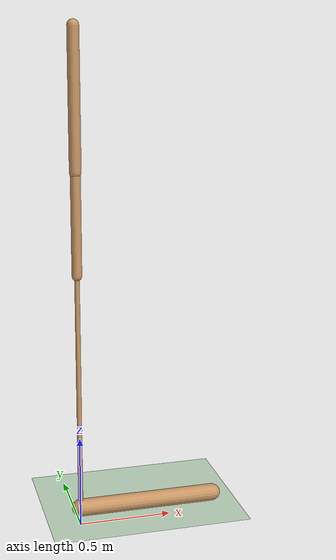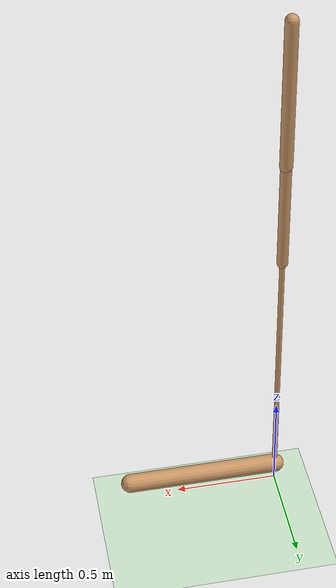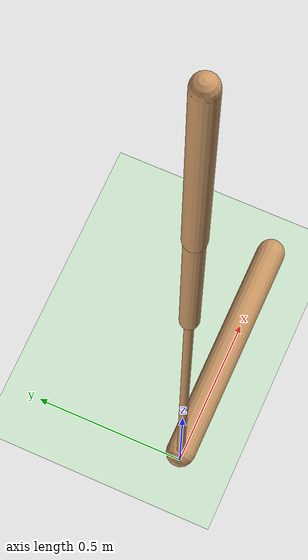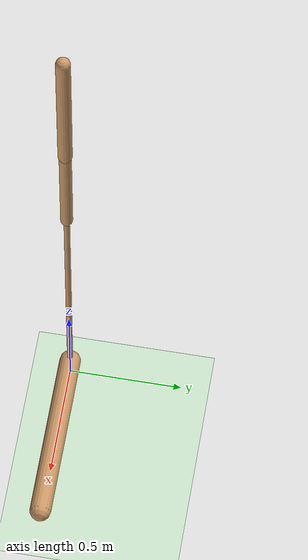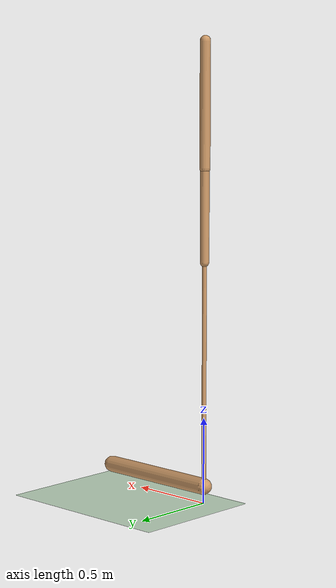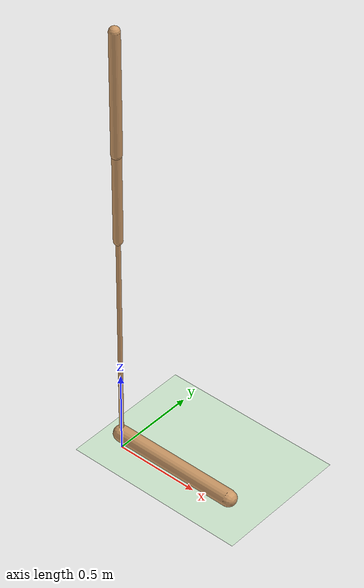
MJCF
<mujoco model="walker2d">
  <compiler angle="degree" inertiafromgeom="true" />
  <default>
    <joint armature="0.01" damping=".1" limited="true" />
    <geom conaffinity="0" condim="3" contype="1" density="1000" friction=".7 .1 .1" rgba="0.8 0.6 .4 1" />
  </default>
  <option integrator="RK4" timestep="0.002" />
  <worldbody>
    <light cutoff="100" diffuse="1 1 1" dir="-0 0 -1.3" directional="true" exponent="1" pos="0 0 1.3" specular=".1 .1 .1" />
    <geom conaffinity="1" condim="3" name="floor" pos="0 0 0" rgba="0.8 0.9 0.8 1" size="40 40 40" type="plane" material="MatPlane" />
    <body name="torso" pos="0 0 2.2799989342689515">
      <camera name="track" mode="trackcom" pos="0 -5 -1.25" xyaxes="1 0 0 0 0 1" />
      <joint armature="0" axis="1 0 0" damping="0" limited="false" name="rootx" pos="0 0 -1.25" stiffness="0" type="slide" />
      <joint armature="0" axis="0 0 1" damping="0" limited="false" name="rootz" pos="0 0 -1.25" ref="1.25" stiffness="0" type="slide" />
      <joint armature="0" axis="0 1 0" damping="0" limited="false" name="rooty" pos="0 0 0" stiffness="0" type="hinge" />
      <geom friction="0.9" name="torso_geom" size="0.0301141869276762 0.35329127311706543" type="capsule" />
      <body name="thigh" pos="0 0 -0.35329127311706543">
        <joint axis="0 -1 0" name="thigh_joint" pos="0 0 0" range="-150 0" type="hinge" />
        <site name="torso_thigh_site" pos="0 0 0" size="0.01" type="sphere" rgba="1 0 0 0.5" />
        <geom friction="0.9" pos="0 0 -0.26468005776405334" name="thigh_geom" size="0.026150165125727654 0.26468005776405334" type="capsule" />
        <body name="leg" pos="0 0 -1.1780338883399963">
          <joint axis="0 -1 0" name="leg_joint" pos="0 0 0.6486737728118896" range="-150 0" type="hinge" />
          <site name="thigh_leg_site" pos="0 0 0.25" size="0.01" type="sphere" rgba="1 0 0 0.5" />
          <geom friction="0.9" name="leg_geom" size="0.012780288234353065 0.6486737728118896" type="capsule" />
          <body name="foot" pos="0.7416943907737732 0 -0.7486737728118896">
            <joint axis="0 -1 0" name="foot_joint" pos="-0.7416943907737732 0 0.1" range="-45 45" type="hinge" />
            <site name="leg_foot_site" pos="-0.2 0 0.1" size="0.01" type="sphere" rgba="1 0 0 0.5" />
            <geom friction="0.9" pos="-0.3708471953868866 0 0.1" quat="0.70710678118654757 0 -0.70710678118654746 0" name="foot_geom" size="0.046988096088171005 0.3708471953868866" type="capsule" />
          </body>
        </body>
      </body>

      <body name="thigh_left" pos="0 0 -0.35329127311706543">
        <joint axis="0 -1 0" name="thigh_left_joint" pos="0 0 0" range="-150 0" type="hinge" />
        <site name="torso_thigh_left_site" pos="0 0 0" size="0.01" type="sphere" rgba="1 0 0 0.5" />
        <geom friction="0.9" name="thigh_left_geom" rgba=".7 .3 .6 1" size="0.026150165125727654 0.26468005776405334" pos="0 0 -0.26468005776405334" type="capsule" />
        <body name="leg_left" pos="0 0 -1.1780338883399963">
          <joint axis="0 -1 0" name="leg_left_joint" pos="0 0 0.6486737728118896" range="-150 0" type="hinge" />
          <site name="thigh_leg_left_site" pos="0 0 0.25" size="0.01" type="sphere" rgba="1 0 0 0.5" />
          <geom friction="0.9" name="leg_left_geom" rgba=".7 .3 .6 1" size="0.012780288234353065 0.6486737728118896" type="capsule" />
          <body name="foot_left" pos="0.7416943907737732 0 -0.7486737728118896">
            <joint axis="0 -1 0" name="foot_left_joint" pos="-0.7416943907737732 0 0.1" range="-45 45" type="hinge" />
            <site name="leg_foot_left_site" pos="-0.2 0 0.1" size="0.01" type="sphere" rgba="1 0 0 0.5" />
            <geom friction="1.9" name="foot_left_geom" rgba=".7 .3 .6 1" size="0.046988096088171005 0.3708471953868866" pos="-0.3708471953868866 0 0.1" type="capsule" quat="0.70710678118654757 0 -0.70710678118654746 0" />
          </body>
        </body>
      </body>
    </body>
  </worldbody>
  <actuator>

    <motor ctrllimited="true" ctrlrange="-1.0 1.0" gear="32.1771492630317" joint="thigh_joint" />
    <motor ctrllimited="true" ctrlrange="-1.0 1.0" gear="26.487907111022146" joint="leg_joint" />
    <motor ctrllimited="true" ctrlrange="-1.0 1.0" gear="227.44070586726107" joint="foot_joint" />
    <motor ctrllimited="true" ctrlrange="-1.0 1.0" gear="32.1771492630317" joint="thigh_left_joint" />
    <motor ctrllimited="true" ctrlrange="-1.0 1.0" gear="26.487907111022146" joint="leg_left_joint" />
    <motor ctrllimited="true" ctrlrange="-1.0 1.0" gear="227.44070586726107" joint="foot_left_joint" />

  </actuator>
    <asset>
        <texture type="skybox" builtin="gradient" rgb1=".4 .5 .6" rgb2="0 0 0" width="100" height="100" />
        <texture builtin="flat" height="1278" mark="cross" markrgb="1 1 1" name="texgeom" random="0.01" rgb1="0.8 0.6 0.4" rgb2="0.8 0.6 0.4" type="cube" width="127" />
        <texture builtin="checker" height="100" name="texplane" rgb1="0 0 0" rgb2="0.8 0.8 0.8" type="2d" width="100" />
        <material name="MatPlane" reflectance="0.5" shininess="1" specular="1" texrepeat="60 60" texture="texplane" />
        <material name="geom" texture="texgeom" texuniform="true" />
    </asset>

  <sensor>
    <force site="torso_thigh_site" name="torso_thigh_sensor" />
    <force site="thigh_leg_site" name="thigh_leg_sensor" />
    <force site="leg_foot_site" name="leg_foot_sensor" />
    <force site="torso_thigh_left_site" name="torso_thigh_left_sensor" />
    <force site="thigh_leg_left_site" name="thigh_leg_left_sensor" />
    <force site="leg_foot_left_site" name="leg_foot_left_sensor" />
  </sensor>
</mujoco>
